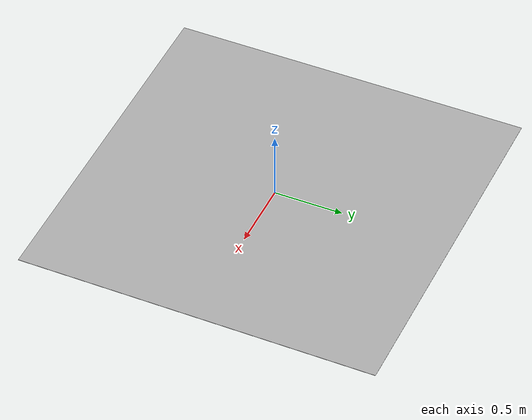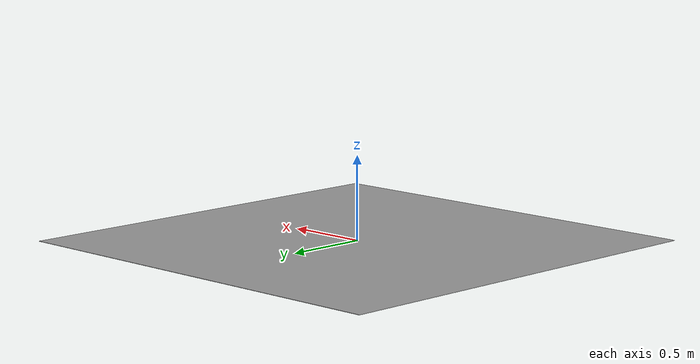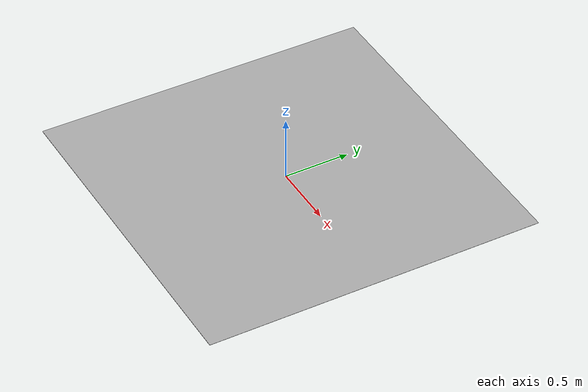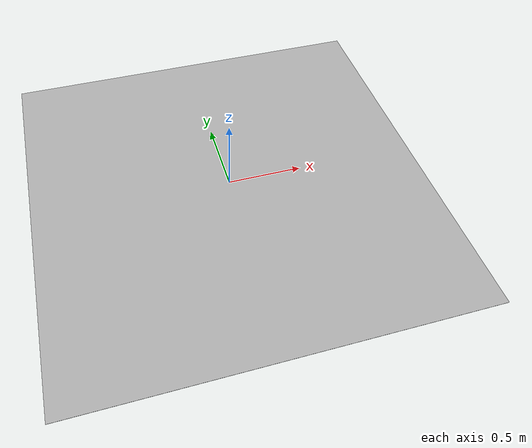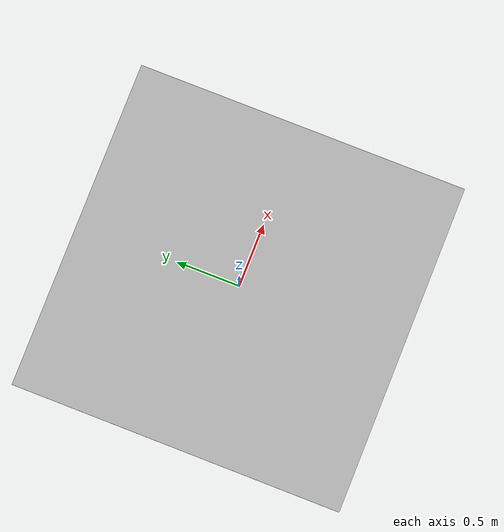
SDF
<?xml version="1.0" ?>
<sdf version="1.5">
  <model name="track_plane">
    <static>true</static>
    <link name="link">
      <collision name="collision">
        <geometry>
          <plane>
            <normal>0 0 1</normal>
            <size>2.6 2.6</size>
          </plane>
        </geometry>
        <surface>
          <contact>
             <collide_bitmask>0xffff</collide_bitmask>
          </contact>
          <friction>
            <ode>
              <mu>100</mu>
              <mu2>50</mu2>
            </ode>
          </friction>
        </surface>
      </collision>
      <visual name="visual">
        <cast_shadows>false</cast_shadows>
        <geometry>
          <plane>
            <normal>0 0 1</normal>
            <size>2.6 2.6</size>
          </plane>
        </geometry>
        <material>
          <script>
            <uri>model://track_plane/materials/scripts</uri>
            <uri>model://track_plane/materials/textures</uri>
            <name>TrackCar/Diffuse_v2</name>
          </script>
        </material>
      </visual>
    </link>
  </model>
</sdf>
